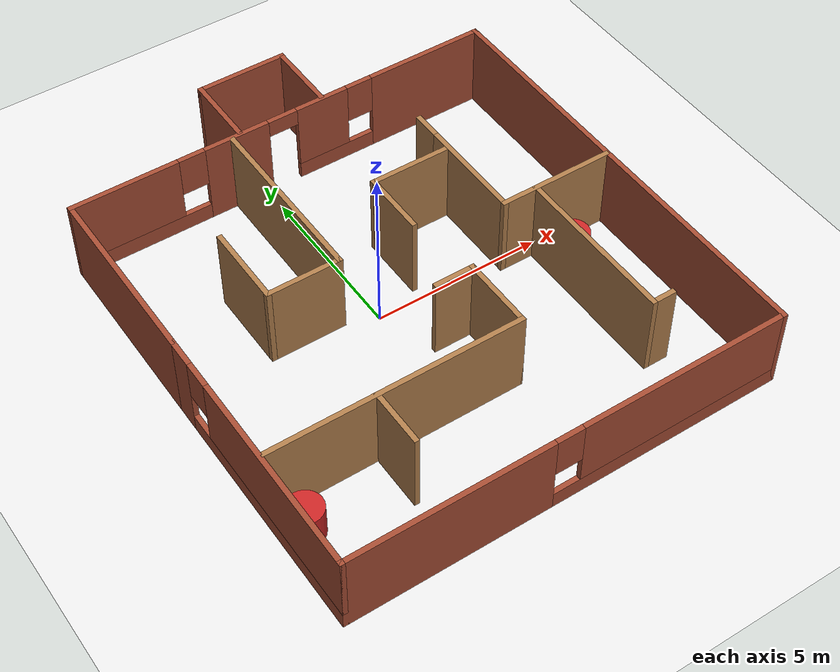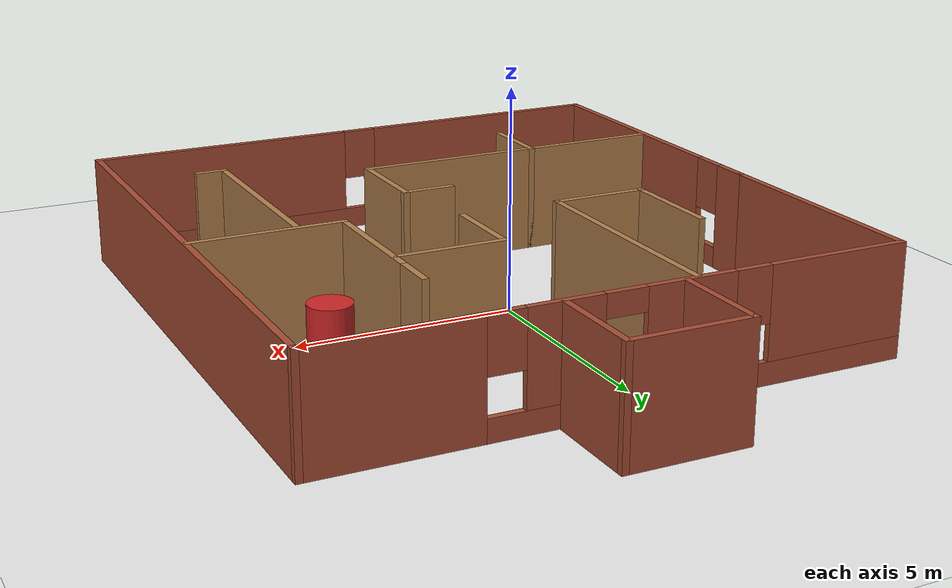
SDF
<sdf version="1.6">
 <world name="default">
  <light name="sun" type="directional">
   <pose>0 0 10 0 -0 0</pose>
   <diffuse>0.8 0.8 0.8 1</diffuse>
   <specular>0.1 0.1 0.1 1</specular>
   <attenuation>
    <range>1000</range>
    <constant>0.9</constant>
    <linear>0.01</linear>
    <quadratic>0.001</quadratic>
   </attenuation>
   <direction>-0.5 0.5 -1</direction>
  </light>
  <model name="ground_plane">
   <static>1</static>
   <link name="link">
    <collision name="collision">
     <geometry><plane><normal>0 0 1</normal><size>100 100</size></plane></geometry>
     <surface><friction><ode><mu>100</mu><mu2>50</mu2></ode></friction></surface>
    </collision>
    <visual name="visual">
     <cast_shadows>0</cast_shadows>
     <geometry><plane><normal>0 0 1</normal><size>100 100</size></plane></geometry>
     <material>
      <script><uri>file://media/materials/scripts/gazebo.material</uri><name>Gazebo/White</name></script>
     </material>
    </visual>
   </link>
  </model>
  <physics name="default_physics" default="0" type="ode">
   <real_time_update_rate>1000</real_time_update_rate>
   <max_step_size>0.001</max_step_size>
   <real_time_factor>1</real_time_factor>
   <ode>
    <solver>
     <type>quick</type>
     <iters>150</iters>
     <precon_iters>0</precon_iters>
     <sor>1.4</sor>
     <use_dynamic_moi_rescaling>1</use_dynamic_moi_rescaling>
    </solver>
    <constraints>
     <cfm>1e-05</cfm>
     <erp>0.2</erp>
     <contact_max_correcting_vel>2000</contact_max_correcting_vel>
     <contact_surface_layer>0.01</contact_surface_layer>
    </constraints>
   </ode>
  </physics>
  <gravity>0 0 -9.8</gravity>
  <magnetic_field>6e-06 2.3e-05 -4.2e-05</magnetic_field>
  <atmosphere type="adiabatic"/>
  <scene><ambient>0.4 0.4 0.4 1</ambient><background>0.7 0.7 0.7 1</background><shadows>1</shadows></scene>
  <spherical_coordinates>
   <surface_model>EARTH_WGS84</surface_model>
   <latitude_deg>0</latitude_deg>
   <longitude_deg>0</longitude_deg>
   <elevation>0</elevation>
   <heading_deg>0</heading_deg>
  </spherical_coordinates>
  <model name="Model2">
   <pose>0.689235 0.366473 0 0 -0 0</pose>
   <link name="Wall_16">
    <collision name="Wall_16_Collision">
     <geometry><box><size>2.25 0.15 2.5</size></box></geometry>
     <pose>0 0 1.25 0 -0 0</pose>
    </collision>
    <visual name="Wall_16_Visual">
     <pose>0 0 1.25 0 -0 0</pose>
     <geometry><box><size>2.25 0.15 2.5</size></box></geometry>
     <material>
      <script><uri>file://media/materials/scripts/gazebo.material</uri><name>Gazebo/Bricks</name></script>
      <ambient>1 1 1 1</ambient>
     </material>
    </visual>
    <pose>1.26026 6.58787 0 0 -0 1.5708</pose>
   </link>
   <link name="Wall_17">
    <collision name="Wall_17_Collision">
     <geometry><box><size>2.75 0.15 2.5</size></box></geometry>
     <pose>0 0 1.25 0 -0 0</pose>
    </collision>
    <visual name="Wall_17_Visual">
     <pose>0 0 1.25 0 -0 0</pose>
     <geometry><box><size>2.75 0.15 2.5</size></box></geometry>
     <material>
      <script><uri>file://media/materials/scripts/gazebo.material</uri><name>Gazebo/Bricks</name></script>
      <ambient>1 1 1 1</ambient>
     </material>
    </visual>
    <pose>-0.039737 7.63787 0 0 -0 3.14159</pose>
   </link>
   <link name="Wall_18">
    <collision name="Wall_18_Collision">
     <geometry><box><size>2.25 0.15 2.5</size></box></geometry>
     <pose>0 0 1.25 0 -0 0</pose>
    </collision>
    <visual name="Wall_18_Visual">
     <pose>0 0 1.25 0 -0 0</pose>
     <geometry><box><size>2.25 0.15 2.5</size></box></geometry>
     <material>
      <script><uri>file://media/materials/scripts/gazebo.material</uri><name>Gazebo/Bricks</name></script>
      <ambient>1 1 1 1</ambient>
     </material>
    </visual>
    <pose>-1.33974 6.58787 0 0 0 -1.5708</pose>
   </link>
   <link name="Wall_20">
    <collision name="Wall_20_Collision">
     <geometry><box><size>5.5 0.15 2.5</size></box></geometry>
     <pose>0 0 1.25 0 -0 0</pose>
    </collision>
    <visual name="Wall_20_Visual">
     <pose>0 0 1.25 0 -0 0</pose>
     <geometry><box><size>5.5 0.15 2.5</size></box></geometry>
     <material>
      <script><uri>file://media/materials/scripts/gazebo.material</uri><name>Gazebo/Wood</name></script>
      <ambient>1 1 1 1</ambient>
     </material>
    </visual>
    <pose>-1.62087 2.7014 0 0 0 -1.5708</pose>
   </link>
   <link name="Wall_21">
    <collision name="Wall_21_Collision">
     <geometry><box><size>2.25 0.15 2.5</size></box></geometry>
     <pose>0 0 1.25 0 -0 0</pose>
    </collision>
    <visual name="Wall_21_Visual">
     <pose>0 0 1.25 0 -0 0</pose>
     <geometry><box><size>2.25 0.15 2.5</size></box></geometry>
     <material>
      <script><uri>file://media/materials/scripts/gazebo.material</uri><name>Gazebo/Wood</name></script>
      <ambient>1 1 1 1</ambient>
     </material>
    </visual>
    <pose>-2.67087 0.026399 0 0 -0 3.14159</pose>
   </link>
   <link name="Wall_22">
    <collision name="Wall_22_Collision">
     <geometry><box><size>2.5 0.15 2.5</size></box></geometry>
     <pose>0 0 1.25 0 -0 0</pose>
    </collision>
    <visual name="Wall_22_Visual">
     <pose>0 0 1.25 0 -0 0</pose>
     <geometry><box><size>2.5 0.15 2.5</size></box></geometry>
     <material>
      <script><uri>file://media/materials/scripts/gazebo.material</uri><name>Gazebo/Wood</name></script>
      <ambient>1 1 1 1</ambient>
     </material>
    </visual>
    <pose>-3.72087 1.2014 0 0 -0 1.5708</pose>
   </link>
   <link name="Wall_24">
    <collision name="Wall_24_Collision">
     <geometry><box><size>7.5 0.15 2.5</size></box></geometry>
     <pose>0 0 1.25 0 -0 0</pose>
    </collision>
    <visual name="Wall_24_Visual">
     <pose>0 0 1.25 0 -0 0</pose>
     <geometry><box><size>7.5 0.15 2.5</size></box></geometry>
     <material>
      <script><uri>file://media/materials/scripts/gazebo.material</uri><name>Gazebo/Wood</name></script>
      <ambient>1 1 1 1</ambient>
     </material>
    </visual>
    <pose>-2.64478 -4.161 0 0 -0 0</pose>
   </link>
   <link name="Wall_27">
    <collision name="Wall_27_Collision">
     <geometry><box><size>3.5 0.15 2.5</size></box></geometry>
     <pose>0 0 1.25 0 -0 0</pose>
    </collision>
    <visual name="Wall_27_Visual">
     <pose>0 0 1.25 0 -0 0</pose>
     <geometry><box><size>3.5 0.15 2.5</size></box></geometry>
     <material>
      <script><uri>file://media/materials/scripts/gazebo.material</uri><name>Gazebo/Wood</name></script>
      <ambient>1 1 1 1</ambient>
     </material>
    </visual>
    <pose>4.70625 -0.67171 0 0 -0 3.14159</pose>
   </link>
   <link name="Wall_28">
    <collision name="Wall_28_Collision">
     <geometry><box><size>3.25 0.15 2.5</size></box></geometry>
     <pose>0 0 1.25 0 -0 0</pose>
    </collision>
    <visual name="Wall_28_Visual">
     <pose>0 0 1.25 0 -0 0</pose>
     <geometry><box><size>3.25 0.15 2.5</size></box></geometry>
     <material>
      <script><uri>file://media/materials/scripts/gazebo.material</uri><name>Gazebo/Wood</name></script>
      <ambient>1 1 1 1</ambient>
     </material>
    </visual>
    <pose>3.03125 0.87829 0 0 -0 1.5708</pose>
   </link>
   <link name="Wall_29">
    <collision name="Wall_29_Collision">
     <geometry><box><size>1 0.15 2.5</size></box></geometry>
     <pose>0 0 1.25 0 -0 0</pose>
    </collision>
    <visual name="Wall_29_Visual">
     <pose>0 0 1.25 0 -0 0</pose>
     <geometry><box><size>1 0.15 2.5</size></box></geometry>
     <material>
      <script><uri>file://media/materials/scripts/gazebo.material</uri><name>Gazebo/Wood</name></script>
      <ambient>1 1 1 1</ambient>
     </material>
    </visual>
    <pose>3.03125 2.85329 0 0 -0 1.5708</pose>
   </link>
   <link name="Wall_3">
    <pose>-6.425 -3.83787 0 0 0 -1.5708</pose>
    <visual name="Wall_3_Visual_0">
     <pose>-3.42884 0 1.25 0 -0 0</pose>
     <geometry><box><size>0.892328 0.15 2.5</size></box></geometry>
     <material>
      <script><uri>file://media/materials/scripts/gazebo.material</uri><name>Gazebo/Bricks</name></script>
      <ambient>1 1 1 1</ambient>
     </material>
    </visual>
    <collision name="Wall_3_Collision_0">
     <geometry><box><size>0.892328 0.15 2.5</size></box></geometry>
     <pose>-3.42884 0 1.25 0 -0 0</pose>
    </collision>
    <visual name="Wall_3_Visual_1">
     <pose>0.446164 0 0.25 0 -0 0</pose>
     <geometry><box><size>6.85767 0.15 0.5</size></box></geometry>
     <material>
      <script><uri>file://media/materials/scripts/gazebo.material</uri><name>Gazebo/Bricks</name></script>
      <ambient>1 1 1 1</ambient>
     </material>
    </visual>
    <collision name="Wall_3_Collision_1">
     <geometry><box><size>6.85767 0.15 0.5</size></box></geometry>
     <pose>0.446164 0 0.25 0 -0 0</pose>
    </collision>
    <visual name="Wall_3_Visual_2">
     <pose>0.846164 0 1.5 0 -0 0</pose>
     <geometry><box><size>6.05767 0.15 2</size></box></geometry>
     <material>
      <script><uri>file://media/materials/scripts/gazebo.material</uri><name>Gazebo/Bricks</name></script>
      <ambient>1 1 1 1</ambient>
     </material>
    </visual>
    <collision name="Wall_3_Collision_2">
     <geometry><box><size>6.05767 0.15 2</size></box></geometry>
     <pose>0.846164 0 1.5 0 -0 0</pose>
    </collision>
    <visual name="Wall_3_Visual_3">
     <pose>-2.58267 0 1.9 0 -0 0</pose>
     <geometry><box><size>0.8 0.15 1.2</size></box></geometry>
     <material>
      <script><uri>file://media/materials/scripts/gazebo.material</uri><name>Gazebo/Bricks</name></script>
      <ambient>1 1 1 1</ambient>
     </material>
    </visual>
    <collision name="Wall_3_Collision_3">
     <geometry><box><size>0.8 0.15 1.2</size></box></geometry>
     <pose>-2.58267 0 1.9 0 -0 0</pose>
    </collision>
   </link>
   <link name="Wall_32">
    <collision name="Wall_32_Collision">
     <geometry><box><size>5 0.15 2.5</size></box></geometry>
     <pose>0 0 1.25 0 -0 0</pose>
    </collision>
    <visual name="Wall_32_Visual">
     <pose>0 0 1.25 0 -0 0</pose>
     <geometry><box><size>5 0.15 2.5</size></box></geometry>
     <material>
      <script><uri>file://media/materials/scripts/gazebo.material</uri><name>Gazebo/Wood</name></script>
      <ambient>1 1 1 1</ambient>
     </material>
    </visual>
    <pose>4.05505 -3.09671 0 0 0 -1.5708</pose>
   </link>
   <link name="Wall_33">
    <collision name="Wall_33_Collision">
     <geometry><box><size>0.75 0.15 2.5</size></box></geometry>
     <pose>0 0 1.25 0 -0 0</pose>
    </collision>
    <visual name="Wall_33_Visual">
     <pose>0 0 1.25 0 -0 0</pose>
     <geometry><box><size>0.75 0.15 2.5</size></box></geometry>
     <material>
      <script><uri>file://media/materials/scripts/gazebo.material</uri><name>Gazebo/Wood</name></script>
      <ambient>1 1 1 1</ambient>
     </material>
    </visual>
    <pose>4.35505 -5.52171 0 0 -0 0</pose>
   </link>
   <link name="Wall_35">
    <collision name="Wall_35_Collision">
     <geometry><box><size>2.25 0.15 2.5</size></box></geometry>
     <pose>0 0 1.25 0 -0 0</pose>
    </collision>
    <visual name="Wall_35_Visual">
     <pose>0 0 1.25 0 -0 0</pose>
     <geometry><box><size>2.25 0.15 2.5</size></box></geometry>
     <material>
      <script><uri>file://media/materials/scripts/gazebo.material</uri><name>Gazebo/Wood</name></script>
      <ambient>1 1 1 1</ambient>
     </material>
    </visual>
    <pose>1.03022 -3.111 0 0 -0 1.5708</pose>
   </link>
   <link name="Wall_36">
    <collision name="Wall_36_Collision">
     <geometry><box><size>1.25 0.15 2.5</size></box></geometry>
     <pose>0 0 1.25 0 -0 0</pose>
    </collision>
    <visual name="Wall_36_Visual">
     <pose>0 0 1.25 0 -0 0</pose>
     <geometry><box><size>1.25 0.15 2.5</size></box></geometry>
     <material>
      <script><uri>file://media/materials/scripts/gazebo.material</uri><name>Gazebo/Wood</name></script>
      <ambient>1 1 1 1</ambient>
     </material>
    </visual>
    <pose>0.480218 -2.061 0 0 -0 3.14159</pose>
   </link>
   <link name="Wall_38">
    <collision name="Wall_38_Collision">
     <geometry><box><size>1.75 0.15 2.5</size></box></geometry>
     <pose>0 0 1.25 0 -0 0</pose>
    </collision>
    <visual name="Wall_38_Visual">
     <pose>0 0 1.25 0 -0 0</pose>
     <geometry><box><size>1.75 0.15 2.5</size></box></geometry>
     <material>
      <script><uri>file://media/materials/scripts/gazebo.material</uri><name>Gazebo/Wood</name></script>
      <ambient>1 1 1 1</ambient>
     </material>
    </visual>
    <pose>-3.20268 -4.961 0 0 0 -1.5708</pose>
   </link>
   <link name="Wall_4">
    <pose>0 -7.63787 0 0 -0 0</pose>
    <visual name="Wall_4_Visual_0">
     <pose>-3.5277 0 1.25 0 -0 0</pose>
     <geometry><box><size>5.94461 0.15 2.5</size></box></geometry>
     <material>
      <script><uri>file://media/materials/scripts/gazebo.material</uri><name>Gazebo/Bricks</name></script>
      <ambient>1 1 1 1</ambient>
     </material>
    </visual>
    <collision name="Wall_4_Collision_0">
     <geometry><box><size>5.94461 0.15 2.5</size></box></geometry>
     <pose>-3.5277 0 1.25 0 -0 0</pose>
    </collision>
    <visual name="Wall_4_Visual_1">
     <pose>2.9723 0 0.25 0 -0 0</pose>
     <geometry><box><size>7.05539 0.15 0.5</size></box></geometry>
     <material>
      <script><uri>file://media/materials/scripts/gazebo.material</uri><name>Gazebo/Bricks</name></script>
      <ambient>1 1 1 1</ambient>
     </material>
    </visual>
    <collision name="Wall_4_Collision_1">
     <geometry><box><size>7.05539 0.15 0.5</size></box></geometry>
     <pose>2.9723 0 0.25 0 -0 0</pose>
    </collision>
    <visual name="Wall_4_Visual_2">
     <pose>3.3723 0 1.5 0 -0 0</pose>
     <geometry><box><size>6.25539 0.15 2</size></box></geometry>
     <material>
      <script><uri>file://media/materials/scripts/gazebo.material</uri><name>Gazebo/Bricks</name></script>
      <ambient>1 1 1 1</ambient>
     </material>
    </visual>
    <collision name="Wall_4_Collision_2">
     <geometry><box><size>6.25539 0.15 2</size></box></geometry>
     <pose>3.3723 0 1.5 0 -0 0</pose>
    </collision>
    <visual name="Wall_4_Visual_3">
     <pose>-0.155394 0 1.9 0 -0 0</pose>
     <geometry><box><size>0.8 0.15 1.2</size></box></geometry>
     <material>
      <script><uri>file://media/materials/scripts/gazebo.material</uri><name>Gazebo/Bricks</name></script>
      <ambient>1 1 1 1</ambient>
     </material>
    </visual>
    <collision name="Wall_4_Collision_3">
     <geometry><box><size>0.8 0.15 1.2</size></box></geometry>
     <pose>-0.155394 0 1.9 0 -0 0</pose>
    </collision>
   </link>
   <link name="Wall_40">
    <collision name="Wall_40_Collision">
     <geometry><box><size>2.5 0.15 2.5</size></box></geometry>
     <pose>0 0 1.25 0 -0 0</pose>
    </collision>
    <visual name="Wall_40_Visual">
     <pose>0 0 1.25 0 -0 0</pose>
     <geometry><box><size>2.5 0.15 2.5</size></box></geometry>
     <material>
      <script><uri>file://media/materials/scripts/gazebo.material</uri><name>Gazebo/Wood</name></script>
      <ambient>1 1 1 1</ambient>
     </material>
    </visual>
    <pose>1.81 1.88711 0 0 -0 3.14159</pose>
   </link>
   <link name="Wall_41">
    <collision name="Wall_41_Collision">
     <geometry><box><size>2 0.15 2.5</size></box></geometry>
     <pose>0 0 1.25 0 -0 0</pose>
    </collision>
    <visual name="Wall_41_Visual">
     <pose>0 0 1.25 0 -0 0</pose>
     <geometry><box><size>2 0.15 2.5</size></box></geometry>
     <material>
      <script><uri>file://media/materials/scripts/gazebo.material</uri><name>Gazebo/Wood</name></script>
      <ambient>1 1 1 1</ambient>
     </material>
    </visual>
    <pose>0.635001 0.962105 0 0 0 -1.5708</pose>
   </link>
   <link name="Wall_5">
    <collision name="Wall_5_Collision">
     <geometry><box><size>13.25 0.15 2.5</size></box></geometry>
     <pose>0 0 1.25 0 -0 0</pose>
    </collision>
    <visual name="Wall_5_Visual">
     <pose>0 0 1.25 0 -0 0</pose>
     <geometry><box><size>13.25 0.15 2.5</size></box></geometry>
     <material>
      <script><uri>file://media/materials/scripts/gazebo.material</uri><name>Gazebo/Bricks</name></script>
      <ambient>1 1 1 1</ambient>
     </material>
    </visual>
    <pose>6.425 -1.08787 0 0 -0 1.5708</pose>
   </link>
   <link name="Wall_6">
    <pose>0 5.46213 0 0 -0 3.14159</pose>
    <visual name="Wall_6_Visual_0">
     <pose>-4.66879 0 1.25 0 -0 0</pose>
     <geometry><box><size>3.66243 0.15 2.5</size></box></geometry>
     <material>
      <script><uri>file://media/materials/scripts/gazebo.material</uri><name>Gazebo/Bricks</name></script>
      <ambient>1 1 1 1</ambient>
     </material>
    </visual>
    <collision name="Wall_6_Collision_0">
     <geometry><box><size>3.66243 0.15 2.5</size></box></geometry>
     <pose>-4.66879 0 1.25 0 -0 0</pose>
    </collision>
    <visual name="Wall_6_Visual_1">
     <pose>1.47792 0 1.25 0 -0 0</pose>
     <geometry><box><size>1.97646 0.15 2.5</size></box></geometry>
     <material>
      <script><uri>file://media/materials/scripts/gazebo.material</uri><name>Gazebo/Bricks</name></script>
      <ambient>1 1 1 1</ambient>
     </material>
    </visual>
    <collision name="Wall_6_Collision_1">
     <geometry><box><size>1.97646 0.15 2.5</size></box></geometry>
     <pose>1.47792 0 1.25 0 -0 0</pose>
    </collision>
    <visual name="Wall_6_Visual_2">
     <pose>-1.62394 0 0.25 0 -0 0</pose>
     <geometry><box><size>2.42727 0.15 0.5</size></box></geometry>
     <material>
      <script><uri>file://media/materials/scripts/gazebo.material</uri><name>Gazebo/Bricks</name></script>
      <ambient>1 1 1 1</ambient>
     </material>
    </visual>
    <collision name="Wall_6_Collision_2">
     <geometry><box><size>2.42727 0.15 0.5</size></box></geometry>
     <pose>-1.62394 0 0.25 0 -0 0</pose>
    </collision>
    <visual name="Wall_6_Visual_3">
     <pose>4.48308 0 0.25 0 -0 0</pose>
     <geometry><box><size>4.03385 0.15 0.5</size></box></geometry>
     <material>
      <script><uri>file://media/materials/scripts/gazebo.material</uri><name>Gazebo/Bricks</name></script>
      <ambient>1 1 1 1</ambient>
     </material>
    </visual>
    <collision name="Wall_6_Collision_3">
     <geometry><box><size>4.03385 0.15 0.5</size></box></geometry>
     <pose>4.48308 0 0.25 0 -0 0</pose>
    </collision>
    <visual name="Wall_6_Visual_4">
     <pose>-1.22394 0 1.5 0 -0 0</pose>
     <geometry><box><size>1.62727 0.15 2</size></box></geometry>
     <material>
      <script><uri>file://media/materials/scripts/gazebo.material</uri><name>Gazebo/Bricks</name></script>
      <ambient>1 1 1 1</ambient>
     </material>
    </visual>
    <collision name="Wall_6_Collision_4">
     <geometry><box><size>1.62727 0.15 2</size></box></geometry>
     <pose>-1.22394 0 1.5 0 -0 0</pose>
    </collision>
    <visual name="Wall_6_Visual_5">
     <pose>-1.22394 0 1.5 0 -0 0</pose>
     <geometry><box><size>1.62727 0.15 2</size></box></geometry>
     <material>
      <script><uri>file://media/materials/scripts/gazebo.material</uri><name>Gazebo/Bricks</name></script>
      <ambient>1 1 1 1</ambient>
     </material>
    </visual>
    <collision name="Wall_6_Collision_5">
     <geometry><box><size>1.62727 0.15 2</size></box></geometry>
     <pose>-1.22394 0 1.5 0 -0 0</pose>
    </collision>
    <visual name="Wall_6_Visual_6">
     <pose>4.88308 0 1.5 0 -0 0</pose>
     <geometry><box><size>3.23385 0.15 2</size></box></geometry>
     <material>
      <script><uri>file://media/materials/scripts/gazebo.material</uri><name>Gazebo/Bricks</name></script>
      <ambient>1 1 1 1</ambient>
     </material>
    </visual>
    <collision name="Wall_6_Collision_6">
     <geometry><box><size>3.23385 0.15 2</size></box></geometry>
     <pose>4.88308 0 1.5 0 -0 0</pose>
    </collision>
    <visual name="Wall_6_Visual_7">
     <pose>-2.43757 0 1.9 0 -0 0</pose>
     <geometry><box><size>0.8 0.15 1.2</size></box></geometry>
     <material>
      <script><uri>file://media/materials/scripts/gazebo.material</uri><name>Gazebo/Bricks</name></script>
      <ambient>1 1 1 1</ambient>
     </material>
    </visual>
    <collision name="Wall_6_Collision_7">
     <geometry><box><size>0.8 0.15 1.2</size></box></geometry>
     <pose>-2.43757 0 1.9 0 -0 0</pose>
    </collision>
    <visual name="Wall_6_Visual_8">
     <pose>2.86615 0 1.9 0 -0 0</pose>
     <geometry><box><size>0.8 0.15 1.2</size></box></geometry>
     <material>
      <script><uri>file://media/materials/scripts/gazebo.material</uri><name>Gazebo/Bricks</name></script>
      <ambient>1 1 1 1</ambient>
     </material>
    </visual>
    <collision name="Wall_6_Collision_8">
     <geometry><box><size>0.8 0.15 1.2</size></box></geometry>
     <pose>2.86615 0 1.9 0 -0 0</pose>
    </collision>
    <visual name="Wall_6_Visual_9">
     <pose>0.039696 0 2.25 0 -0 0</pose>
     <geometry><box><size>0.9 0.15 0.5</size></box></geometry>
     <material>
      <script><uri>file://media/materials/scripts/gazebo.material</uri><name>Gazebo/Bricks</name></script>
      <ambient>1 1 1 1</ambient>
     </material>
    </visual>
    <collision name="Wall_6_Collision_9">
     <geometry><box><size>0.9 0.15 0.5</size></box></geometry>
     <pose>0.039696 0 2.25 0 -0 0</pose>
    </collision>
    <visual name="Wall_6_Visual_10">
     <pose>0.039696 0 2.25 0 -0 0</pose>
     <geometry><box><size>0.9 0.15 0.5</size></box></geometry>
     <material>
      <script><uri>file://media/materials/scripts/gazebo.material</uri><name>Gazebo/Bricks</name></script>
      <ambient>1 1 1 1</ambient>
     </material>
    </visual>
    <collision name="Wall_6_Collision_10">
     <geometry><box><size>0.9 0.15 0.5</size></box></geometry>
     <pose>0.039696 0 2.25 0 -0 0</pose>
    </collision>
   </link>
   <link name="Wall_7">
    <collision name="Wall_7_Collision">
     <geometry><box><size>5.65 0.15 2.5</size></box></geometry>
     <pose>0 0 1.25 0 -0 0</pose>
    </collision>
    <visual name="Wall_7_Visual">
     <pose>0 0 1.25 0 -0 0</pose>
     <geometry><box><size>5.65 0.15 2.5</size></box></geometry>
     <material>
      <script><uri>file://media/materials/scripts/gazebo.material</uri><name>Gazebo/Bricks</name></script>
      <ambient>1 1 1 1</ambient>
     </material>
    </visual>
    <pose>-6.425 2.71213 0 0 0 -1.5708</pose>
   </link>
   <static>1</static>
  </model>
  <model name="unit_cylinder_0">
   <pose>-5.13112 -4.64768 0.499993 4e-06 4e-06 -0</pose>
   <link name="link">
    <inertial>
     <mass>1</mass>
     <inertia><ixx>0.145833</ixx><ixy>0</ixy><ixz>0</ixz><iyy>0.145833</iyy><iyz>0</iyz><izz>0.125</izz></inertia>
    </inertial>
    <collision name="collision">
     <geometry><cylinder><radius>0.5</radius><length>1</length></cylinder></geometry>
    </collision>
    <visual name="visual">
     <geometry><cylinder><radius>0.5</radius><length>1</length></cylinder></geometry>
     <material>
      <script><name>Gazebo/Red</name><uri>file://media/materials/scripts/gazebo.material</uri></script>
     </material>
    </visual>
   </link>
  </model>
  <model name="unit_cylinder_1">
   <pose>5.50619 -1.03052 0.499997 -4e-06 -4e-06 -0</pose>
   <link name="link">
    <inertial>
     <mass>1</mass>
     <inertia><ixx>0.145833</ixx><ixy>0</ixy><ixz>0</ixz><iyy>0.145833</iyy><iyz>0</iyz><izz>0.125</izz></inertia>
    </inertial>
    <collision name="collision">
     <geometry><cylinder><radius>0.5</radius><length>1</length></cylinder></geometry>
    </collision>
    <visual name="visual">
     <geometry><cylinder><radius>0.5</radius><length>1</length></cylinder></geometry>
     <material>
      <script><name>Gazebo/Red</name><uri>file://media/materials/scripts/gazebo.material</uri></script>
     </material>
    </visual>
   </link>
  </model>
  <model name="unit_cylinder_2">
   <pose>-1.51745 0.967873 0.499993 -4e-06 4e-06 0</pose>
   <link name="link">
    <inertial>
     <mass>1</mass>
     <inertia><ixx>0.145833</ixx><ixy>0</ixy><ixz>0</ixz><iyy>0.145833</iyy><iyz>0</iyz><izz>0.125</izz></inertia>
    </inertial>
    <collision name="collision">
     <geometry><cylinder><radius>0.5</radius><length>1</length></cylinder></geometry>
    </collision>
    <visual name="visual">
     <geometry><cylinder><radius>0.5</radius><length>1</length></cylinder></geometry>
     <material>
      <script><name>Gazebo/Red</name><uri>file://media/materials/scripts/gazebo.material</uri></script>
     </material>
    </visual>
   </link>
  </model>
  <model name="unit_cylinder_3">
   <pose>4.32655 0.311975 0.499997 -4e-06 -4e-06 -0</pose>
   <link name="link">
    <inertial>
     <mass>1</mass>
     <inertia><ixx>0.145833</ixx><ixy>0</ixy><ixz>0</ixz><iyy>0.145833</iyy><iyz>0</iyz><izz>0.125</izz></inertia>
    </inertial>
    <collision name="collision">
     <geometry><cylinder><radius>0.5</radius><length>1</length></cylinder></geometry>
    </collision>
    <visual name="visual">
     <geometry><cylinder><radius>0.5</radius><length>1</length></cylinder></geometry>
     <material>
      <script><name>Gazebo/Red</name><uri>file://media/materials/scripts/gazebo.material</uri></script>
     </material>
    </visual>
   </link>
  </model>
 </world>
</sdf>
